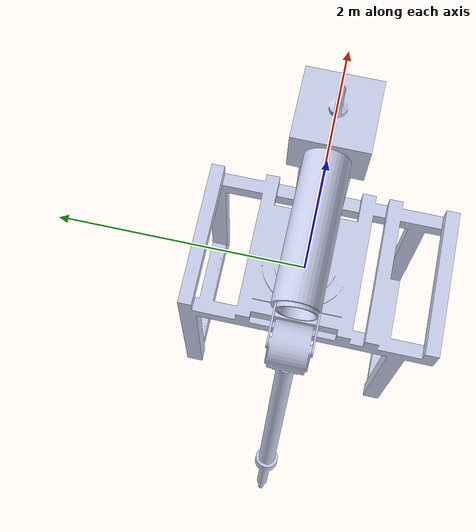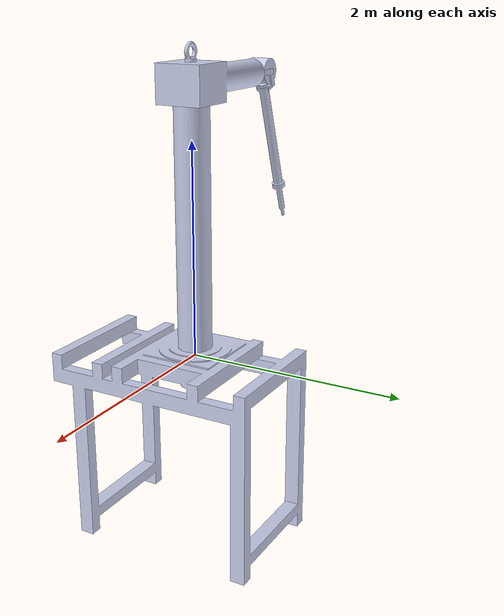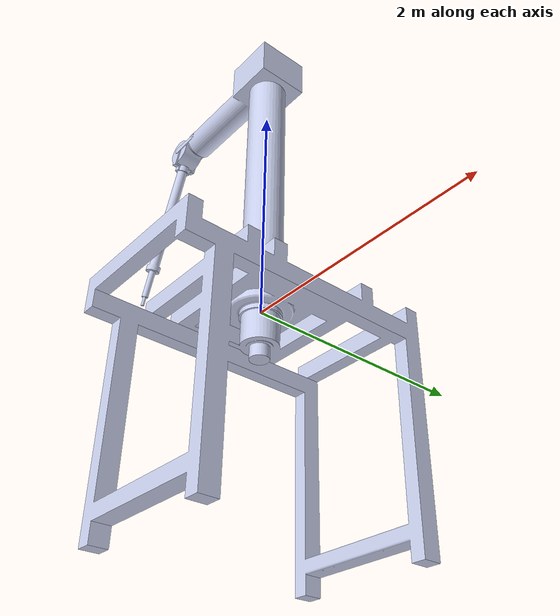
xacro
<?xml version="1.0" encoding="utf-8"?>
<robot
  name="coloumn_description">
  <link
    name="base_link">
    <inertial>
      <origin
        xyz="0.083859 -0.5151 0.072059"
        rpy="0 0 0" />
      <mass
        value="2602.7" />
      <inertia
        ixx="2091.5"
        ixy="8.7862"
        ixz="-1.4249"
        iyy="1728.7"
        iyz="-61.531"
        izz="1376" />
    </inertial>
    <visual>
      <origin
        xyz="0 0 0"
        rpy="0 0 0" />
      <geometry>
        <mesh
          filename="package://coloumn_description/meshes/dae/base_link.dae" />
      </geometry>
      <material
        name="">
        <color
          rgba="0.79216 0.81961 0.93333 1" />
      </material>
    </visual>
    <collision>
      <origin
        xyz="0 0 0"
        rpy="0 0 0" />
      <geometry>
        <mesh
          filename="package://coloumn_description/meshes/stl/base_link.STL" />
      </geometry>
    </collision>
  </link>
  <link
    name="link_1">
    <inertial>
      <origin
        xyz="-4.59830585284842E-15 0.694881547901247 5.29069463240452E-15"
        rpy="0 0 0" />
      <mass
        value="245.900472770129" />
      <inertia
        ixx="164.332235084769"
        ixy="6.34468886049176E-13"
        ixz="-1.11022302462516E-15"
        iyy="4.33258951751966"
        iyz="-5.515823961466E-13"
        izz="164.332235084769" />
    </inertial>
    <visual>
      <origin
        xyz="0 0 0"
        rpy="${-radians(90)} 0 0" />
      <geometry>
        <mesh
          filename="package://coloumn_description/meshes/dae/link_1.dae" />
      </geometry>
      <material
        name="">
        <color
          rgba="0.792156862745098 0.819607843137255 0.933333333333333 1" />
      </material>
    </visual>
    <collision>
      <origin
        xyz="0 0 0"
        rpy="0 0 0" />
      <geometry>
        <mesh
          filename="package://coloumn_description/meshes/stl/link_1.STL" />
      </geometry>
    </collision>
  </link>
  <joint
    name="joint_0"
    type="continuous">
    <origin
      xyz="0 0 -0.052"
      rpy="${radians(90)} 0 0" />
    <parent
      link="base_link" />
    <child
      link="link_1" />
    <axis
      xyz="0 1 0" />
  </joint>
  <link
    name="link_2">
    <inertial>
      <origin
        xyz="-0.0772763117201542 -0.219325865578902 7.81202773802135E-10"
        rpy="0 0 0" />
      <mass
        value="746.442791588615" />
      <inertia
        ixx="242.047871612225"
        ixy="12.651235077018"
        ixz="1.13034789306354E-07"
        iyy="58.6789615463519"
        iyz="-1.91269995730714E-07"
        izz="279.753408215411" />
    </inertial>
    <visual>
      <origin
        xyz="0 0 0"
        rpy="${-radians(90)} 0 0" />
      <geometry>
        <mesh
          filename="package://coloumn_description/meshes/dae/link_2.dae" />
      </geometry>
      <material
        name="">
        <color
          rgba="0.792156862745098 0.819607843137255 0.933333333333333 1" />
      </material>
    </visual>
    <collision>
      <origin
        xyz="0 0 0"
        rpy="0 0 0" />
      <geometry>
        <mesh
          filename="package://coloumn_description/meshes/stl/link_2.STL" />
      </geometry>
    </collision>
  </link>
  <joint
    name="joint_1"
    type="prismatic">
    <origin
      xyz="0 2.541 0"
      rpy="0 0 0" />
    <parent
      link="link_1" />
    <child
      link="link_2" />
    <axis
      xyz="0 1 0" />
    <limit
      lower="0"
      upper="1.8"
      effort="0"
      velocity="0" />
  </joint>
  <link
    name="link_3">
    <inertial>
      <origin
        xyz="9.75044697759664E-15 4.44089209850063E-16 -0.388572638007358"
        rpy="0 0 0" />
      <mass
        value="53.0427720770906" />
      <inertia
        ixx="4.7128315654114"
        ixy="1.47277784459852E-15"
        ixz="9.60564093543947E-14"
        iyy="4.74286563597603"
        iyz="1.55506089182359E-16"
        izz="0.571997737496323" />
    </inertial>
    <visual>
      <origin
        xyz="0 0 0"
        rpy="${-radians(180)} 0 0" />
      <geometry>
        <mesh
          filename="package://coloumn_description/meshes/dae/link_3.dae" />
      </geometry>
      <material
        name="">
        <color
          rgba="0.792156862745098 0.819607843137255 0.933333333333333 1" />
      </material>
    </visual>
    <collision>
      <origin
        xyz="0 0 0"
        rpy="0 0 0" />
      <geometry>
        <mesh
          filename="package://coloumn_description/meshes/stl/link_3.STL" />
      </geometry>
    </collision>
  </link>
  <joint
    name="joint_2"
    type="prismatic">
    <origin
      xyz="-0.24211 0 0"
      rpy="0 ${radians(90)} 0" />
    <parent
      link="link_2" />
    <child
      link="link_3" />
    <axis
      xyz="0 0 -1" />
    <limit
      lower="0"
      upper="0.6"
      effort="0"
      velocity="0" />
  </joint>
  <link
    name="link_4">
    <inertial>
      <origin
        xyz="-0.000999999999999709 -0.380155199499237 -2.66453525910038E-15"
        rpy="0 0 0" />
      <mass
        value="148.758636421247" />
      <inertia
        ixx="33.2544832322811"
        ixy="1.94116641163977E-14"
        ixz="5.82867087928207E-16"
        iyy="0.617641615237808"
        iyz="-2.00622155742619E-13"
        izz="33.2290109937646" />
    </inertial>
    <visual>
      <origin
        xyz="0 0 0"
        rpy="0 0 0" />
      <geometry>
        <mesh
          filename="package://coloumn_description/meshes/dae/link_4.dae" />
      </geometry>
      <material
        name="">
        <color
          rgba="0.792156862745098 0.819607843137255 0.933333333333333 1" />
      </material>
    </visual>
    <collision>
      <origin
        xyz="0 0 0"
        rpy="0 0 0" />
      <geometry>
        <mesh
          filename="package://coloumn_description/meshes/stl/link_4.STL" />
      </geometry>
    </collision>
  </link>
  <joint
    name="joint_3"
    type="revolute">
    <origin
      xyz="0 0 -1.0315"
      rpy="2.81 0 ${-radians(180)}" />
    <parent
      link="link_3" />
    <child
      link="link_4" />
    <axis
      xyz="1 0 0" />
    <limit
      lower="0"
      upper="${radians(38)}"
      effort="0"
      velocity="0" />
  </joint>
  <link
    name="tool"/>
  <joint
    name="joint_4"
    type="fixed">
    <origin
      xyz="0 -1.6145 0"
      rpy="${radians(90)} ${-radians(90)} 0" />
    <parent
      link="link_4" />
    <child
      link="tool" />
    <axis
      xyz="0 0 1" />
  </joint>
</robot>
